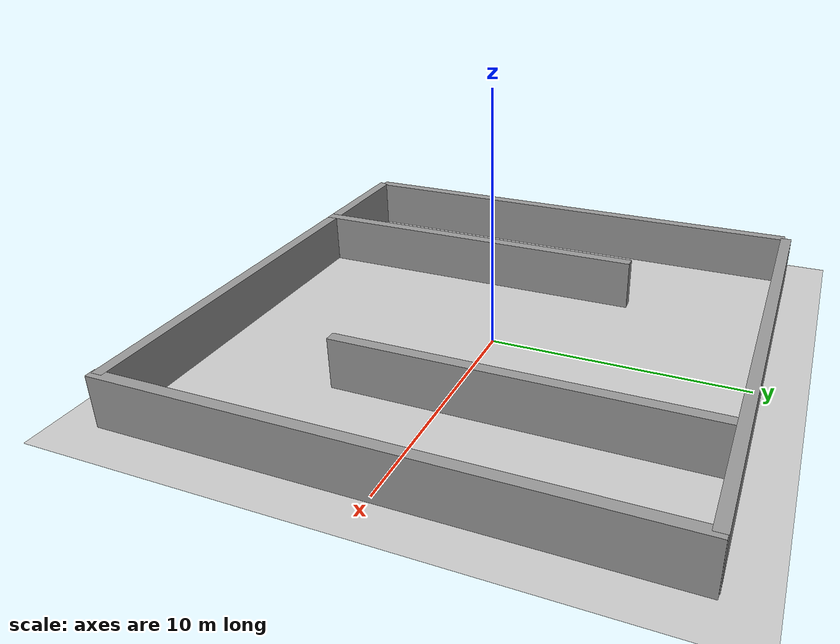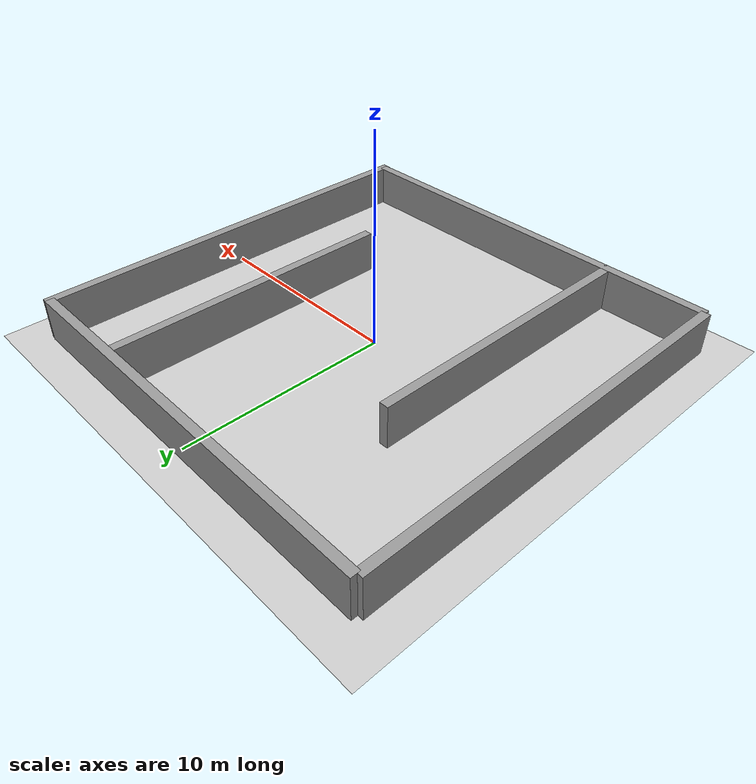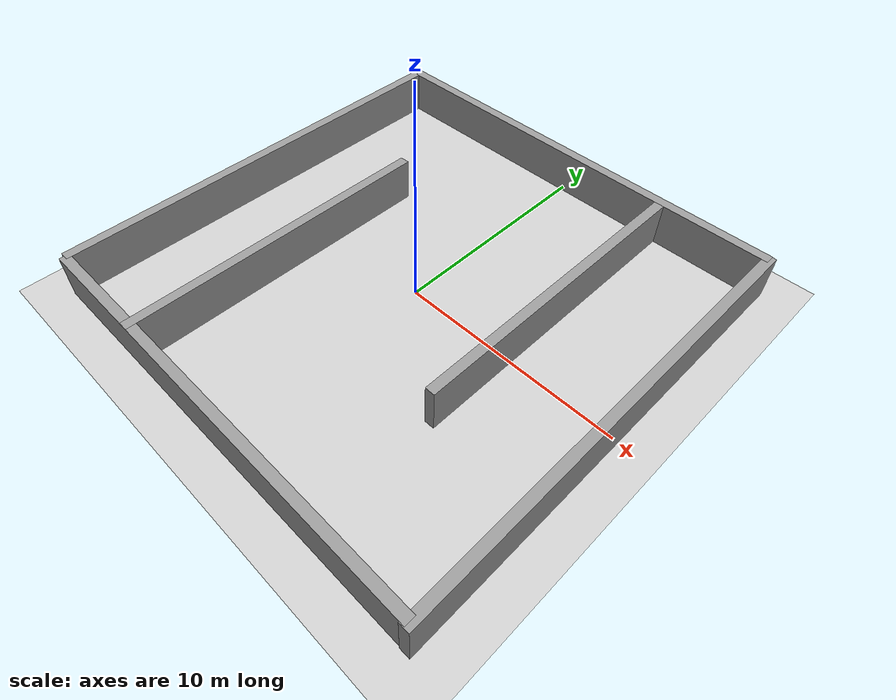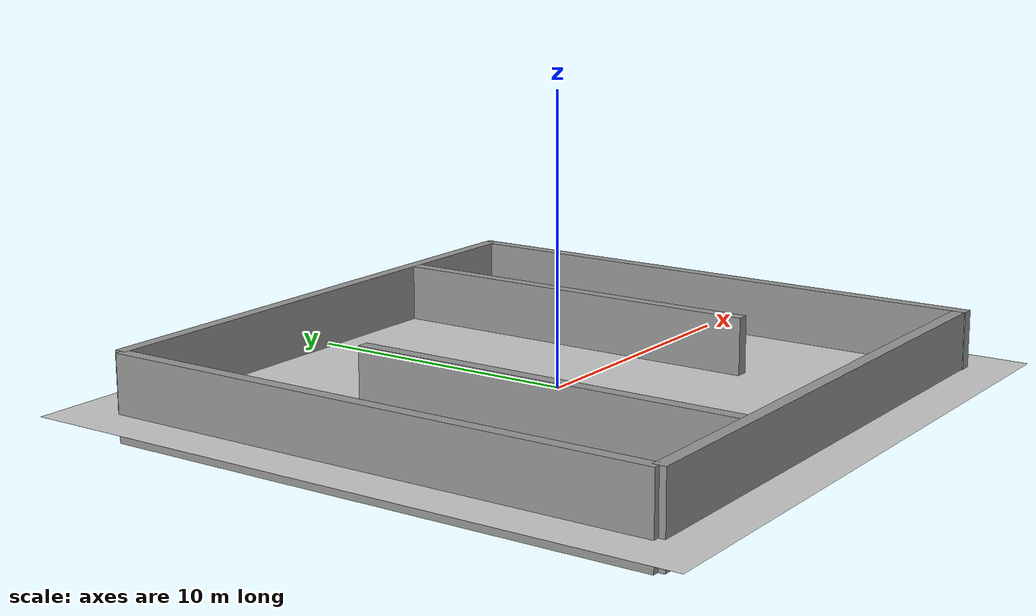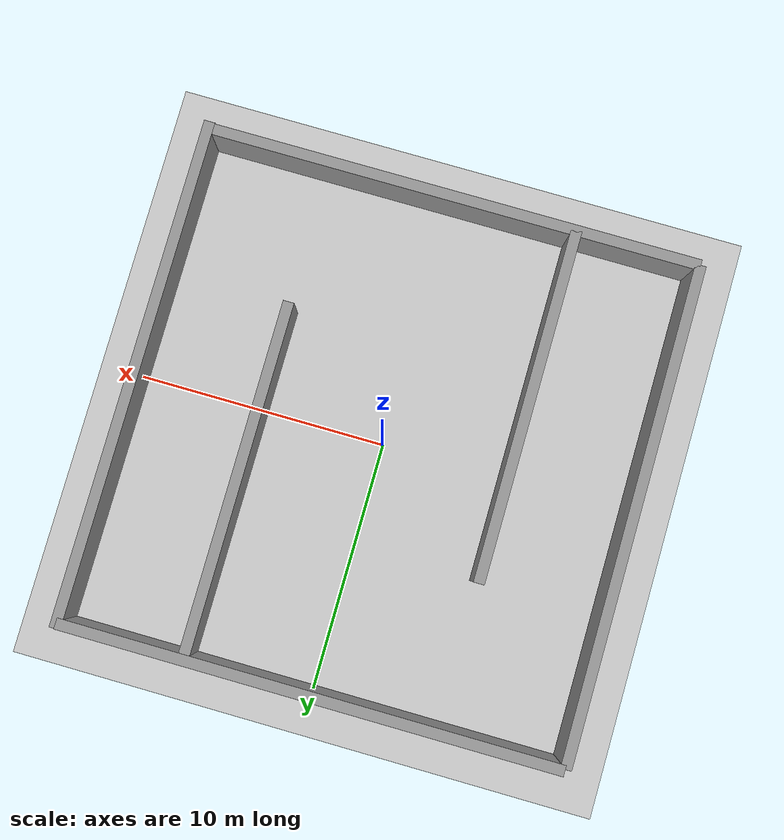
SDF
<sdf version="1.6">
 <world name="default">
  <light name="sun" type="directional">
   <pose>0 0 10 0 -0 0</pose>
   <diffuse>0.8 0.8 0.8 1</diffuse>
   <specular>0.2 0.2 0.2 1</specular>
   <attenuation>
    <range>1000</range>
    <constant>0.9</constant>
    <linear>0.01</linear>
    <quadratic>0.001</quadratic>
   </attenuation>
   <direction>-0.5 0.1 -0.9</direction>
  </light>
  <model name="ground_plane">
   <static>1</static>
   <link name="link">
    <collision name="collision">
     <geometry><plane><normal>0 0 1</normal><size>100 100</size></plane></geometry>
     <surface><friction><ode><mu>100</mu><mu2>50</mu2></ode></friction></surface>
    </collision>
    <visual name="visual">
     <cast_shadows>0</cast_shadows>
     <geometry><plane><normal>0 0 1</normal><size>100 100</size></plane></geometry>
     <material>
      <script><uri>file://media/materials/scripts/gazebo.material</uri><name>Gazebo/Grey</name></script>
     </material>
    </visual>
   </link>
  </model>
  <gravity>0 0 -9.8</gravity>
  <magnetic_field>6e-06 2.3e-05 -4.2e-05</magnetic_field>
  <atmosphere type="adiabatic"/>
  <physics name="default_physics" default="0" type="ode">
   <max_step_size>0.001</max_step_size>
   <real_time_factor>1</real_time_factor>
   <real_time_update_rate>1000</real_time_update_rate>
  </physics>
  <scene><ambient>0.4 0.4 0.4 1</ambient><background>0.7 0.7 0.7 1</background><shadows>1</shadows></scene>
  <spherical_coordinates>
   <surface_model>EARTH_WGS84</surface_model>
   <latitude_deg>0</latitude_deg>
   <longitude_deg>0</longitude_deg>
   <elevation>0</elevation>
   <heading_deg>0</heading_deg>
  </spherical_coordinates>
  <model name="test_map">
   <link name="link_0">
    <pose>2.27252 -10.035 0 0 -0 0</pose>
    <inertial>
     <mass>26.4811</mass>
     <inertia><ixx>20.2907</ixx><ixy>0</ixy><ixz>0</ixz><iyy>902.563</iyy><iyz>0</iyz><izz>883.132</izz></inertia>
    </inertial>
    <visual name="visual">
     <geometry><box><size>20 0.441373 3</size></box></geometry>
     <material>
      <lighting>1</lighting>
      <script><uri>file://media/materials/scripts/gazebo.material</uri><name>Gazebo/Grey</name></script>
      <shader type="pixel"/>
      <ambient>0.3 0.3 0.3 1</ambient>
      <diffuse>0.7 0.7 0.7 1</diffuse>
      <specular>0.01 0.01 0.01 1</specular>
      <emissive>0 0 0 1</emissive>
     </material>
    </visual>
    <collision name="collision">
     <geometry><box><size>20 0.441373 3</size></box></geometry>
     <surface>
      <friction>
       <ode><mu>1</mu><mu2>1</mu2><fdir1>0 0 0</fdir1><slip1>0</slip1><slip2>0</slip2></ode>
       <torsional>
        <coefficient>1</coefficient>
        <patch_radius>0</patch_radius>
        <surface_radius>0</surface_radius>
        <use_patch_radius>1</use_patch_radius>
        <ode><slip>0</slip></ode>
       </torsional>
      </friction>
      <bounce><restitution_coefficient>0</restitution_coefficient><threshold>1e+06</threshold></bounce>
      <contact>
       <collide_without_contact>0</collide_without_contact>
       <collide_without_contact_bitmask>1</collide_without_contact_bitmask>
       <collide_bitmask>1</collide_bitmask>
       <ode>
        <soft_cfm>0</soft_cfm>
        <soft_erp>0.2</soft_erp>
        <kp>1e+13</kp>
        <kd>1</kd>
        <max_vel>0.01</max_vel>
        <min_depth>0</min_depth>
       </ode>
       <bullet>
        <split_impulse>1</split_impulse>
        <split_impulse_penetration_threshold>-0.01</split_impulse_penetration_threshold>
        <soft_cfm>0</soft_cfm>
        <soft_erp>0.2</soft_erp>
        <kp>1e+13</kp>
        <kd>1</kd>
       </bullet>
      </contact>
     </surface>
    </collision>
   </link>
   <link name="link_0_clone">
    <pose>12.2725 -0.03504 0 0 0 -1.5708</pose>
    <inertial>
     <mass>27.1574</mass>
     <inertia><ixx>20.8088</ixx><ixy>0</ixy><ixz>0</ixz><iyy>972.46</iyy><iyz>0</iyz><izz>952.533</izz></inertia>
    </inertial>
    <visual name="visual">
     <geometry><box><size>20.511 0.441373 3</size></box></geometry>
     <material>
      <lighting>1</lighting>
      <script><uri>file://media/materials/scripts/gazebo.material</uri><name>Gazebo/Grey</name></script>
      <shader type="pixel"/>
      <ambient>0.3 0.3 0.3 1</ambient>
      <diffuse>0.7 0.7 0.7 1</diffuse>
      <specular>0.01 0.01 0.01 1</specular>
      <emissive>0 0 0 1</emissive>
     </material>
    </visual>
    <collision name="collision">
     <geometry><box><size>20.511 0.441373 3</size></box></geometry>
     <surface>
      <friction>
       <ode><mu>1</mu><mu2>1</mu2><fdir1>0 0 0</fdir1><slip1>0</slip1><slip2>0</slip2></ode>
       <torsional>
        <coefficient>1</coefficient>
        <patch_radius>0</patch_radius>
        <surface_radius>0</surface_radius>
        <use_patch_radius>1</use_patch_radius>
        <ode><slip>0</slip></ode>
       </torsional>
      </friction>
      <bounce><restitution_coefficient>0</restitution_coefficient><threshold>1e+06</threshold></bounce>
      <contact>
       <collide_without_contact>0</collide_without_contact>
       <collide_without_contact_bitmask>1</collide_without_contact_bitmask>
       <collide_bitmask>1</collide_bitmask>
       <ode>
        <soft_cfm>0</soft_cfm>
        <soft_erp>0.2</soft_erp>
        <kp>1e+13</kp>
        <kd>1</kd>
        <max_vel>0.01</max_vel>
        <min_depth>0</min_depth>
       </ode>
       <bullet>
        <split_impulse>1</split_impulse>
        <split_impulse_penetration_threshold>-0.01</split_impulse_penetration_threshold>
        <soft_cfm>0</soft_cfm>
        <soft_erp>0.2</soft_erp>
        <kp>1e+13</kp>
        <kd>1</kd>
       </bullet>
      </contact>
     </surface>
    </collision>
   </link>
   <link name="link_0_clone_0">
    <pose>-7.72748 -0.03504 0 0 0 -1.5708</pose>
    <inertial>
     <mass>26.4808</mass>
     <inertia><ixx>20.2905</ixx><ixy>0</ixy><ixz>0</ixz><iyy>902.554</iyy><iyz>0</iyz><izz>883.123</izz></inertia>
    </inertial>
    <visual name="visual">
     <geometry><box><size>20 0.441373 3</size></box></geometry>
     <material>
      <lighting>1</lighting>
      <script><uri>file://media/materials/scripts/gazebo.material</uri><name>Gazebo/Grey</name></script>
      <shader type="pixel"/>
      <ambient>0.3 0.3 0.3 1</ambient>
      <diffuse>0.7 0.7 0.7 1</diffuse>
      <specular>0.01 0.01 0.01 1</specular>
      <emissive>0 0 0 1</emissive>
     </material>
    </visual>
    <collision name="collision">
     <geometry><box><size>20 0.441373 3</size></box></geometry>
     <surface>
      <friction>
       <ode><mu>1</mu><mu2>1</mu2><fdir1>0 0 0</fdir1><slip1>0</slip1><slip2>0</slip2></ode>
       <torsional>
        <coefficient>1</coefficient>
        <patch_radius>0</patch_radius>
        <surface_radius>0</surface_radius>
        <use_patch_radius>1</use_patch_radius>
        <ode><slip>0</slip></ode>
       </torsional>
      </friction>
      <bounce><restitution_coefficient>0</restitution_coefficient><threshold>1e+06</threshold></bounce>
      <contact>
       <collide_without_contact>0</collide_without_contact>
       <collide_without_contact_bitmask>1</collide_without_contact_bitmask>
       <collide_bitmask>1</collide_bitmask>
       <ode>
        <soft_cfm>0</soft_cfm>
        <soft_erp>0.2</soft_erp>
        <kp>1e+13</kp>
        <kd>1</kd>
        <max_vel>0.01</max_vel>
        <min_depth>0</min_depth>
       </ode>
       <bullet>
        <split_impulse>1</split_impulse>
        <split_impulse_penetration_threshold>-0.01</split_impulse_penetration_threshold>
        <soft_cfm>0</soft_cfm>
        <soft_erp>0.2</soft_erp>
        <kp>1e+13</kp>
        <kd>1</kd>
       </bullet>
      </contact>
     </surface>
    </collision>
   </link>
   <link name="link_0_clone_0_clone">
    <pose>2.29719 10.0271 0 0 -0 3.14159</pose>
    <inertial>
     <mass>26.4808</mass>
     <inertia><ixx>20.2906</ixx><ixy>0</ixy><ixz>0</ixz><iyy>902.554</iyy><iyz>0</iyz><izz>883.123</izz></inertia>
    </inertial>
    <visual name="visual">
     <geometry><box><size>20 0.441373 3.00001</size></box></geometry>
     <material>
      <lighting>1</lighting>
      <script><uri>file://media/materials/scripts/gazebo.material</uri><name>Gazebo/Grey</name></script>
      <shader type="pixel"/>
      <ambient>0.3 0.3 0.3 1</ambient>
      <diffuse>0.7 0.7 0.7 1</diffuse>
      <specular>0.01 0.01 0.01 1</specular>
      <emissive>0 0 0 1</emissive>
     </material>
    </visual>
    <collision name="collision">
     <geometry><box><size>20 0.441373 3.00001</size></box></geometry>
     <surface>
      <friction>
       <ode><mu>1</mu><mu2>1</mu2><fdir1>0 0 0</fdir1><slip1>0</slip1><slip2>0</slip2></ode>
       <torsional>
        <coefficient>1</coefficient>
        <patch_radius>0</patch_radius>
        <surface_radius>0</surface_radius>
        <use_patch_radius>1</use_patch_radius>
        <ode><slip>0</slip></ode>
       </torsional>
      </friction>
      <bounce><restitution_coefficient>0</restitution_coefficient><threshold>1e+06</threshold></bounce>
      <contact>
       <collide_without_contact>0</collide_without_contact>
       <collide_without_contact_bitmask>1</collide_without_contact_bitmask>
       <collide_bitmask>1</collide_bitmask>
       <ode>
        <soft_cfm>0</soft_cfm>
        <soft_erp>0.2</soft_erp>
        <kp>1e+13</kp>
        <kd>1</kd>
        <max_vel>0.01</max_vel>
        <min_depth>0</min_depth>
       </ode>
       <bullet>
        <split_impulse>1</split_impulse>
        <split_impulse_penetration_threshold>-0.01</split_impulse_penetration_threshold>
        <soft_cfm>0</soft_cfm>
        <soft_erp>0.2</soft_erp>
        <kp>1e+13</kp>
        <kd>1</kd>
       </bullet>
      </contact>
     </surface>
    </collision>
   </link>
   <link name="link_0_clone_0_clone_0">
    <pose>-2.72748 -3.03504 0 0 0 -1.5708</pose>
    <inertial>
     <mass>19.1039</mass>
     <inertia><ixx>14.6381</ixx><ixy>0</ixy><ixz>0</ixz><iyy>345.751</iyy><iyz>0</iyz><izz>331.733</izz></inertia>
    </inertial>
    <visual name="visual">
     <geometry><box><size>14.4285 0.441373 3</size></box></geometry>
     <material>
      <lighting>1</lighting>
      <script><uri>file://media/materials/scripts/gazebo.material</uri><name>Gazebo/Grey</name></script>
      <shader type="pixel"/>
      <ambient>0.3 0.3 0.3 1</ambient>
      <diffuse>0.7 0.7 0.7 1</diffuse>
      <specular>0.01 0.01 0.01 1</specular>
      <emissive>0 0 0 1</emissive>
     </material>
    </visual>
    <collision name="collision">
     <geometry><box><size>14.4285 0.441373 3</size></box></geometry>
     <surface>
      <friction>
       <ode><mu>1</mu><mu2>1</mu2><fdir1>0 0 0</fdir1><slip1>0</slip1><slip2>0</slip2></ode>
       <torsional>
        <coefficient>1</coefficient>
        <patch_radius>0</patch_radius>
        <surface_radius>0</surface_radius>
        <use_patch_radius>1</use_patch_radius>
        <ode><slip>0</slip></ode>
       </torsional>
      </friction>
      <bounce><restitution_coefficient>0</restitution_coefficient><threshold>1e+06</threshold></bounce>
      <contact>
       <collide_without_contact>0</collide_without_contact>
       <collide_without_contact_bitmask>1</collide_without_contact_bitmask>
       <collide_bitmask>1</collide_bitmask>
       <ode>
        <soft_cfm>0</soft_cfm>
        <soft_erp>0.2</soft_erp>
        <kp>1e+13</kp>
        <kd>1</kd>
        <max_vel>0.01</max_vel>
        <min_depth>0</min_depth>
       </ode>
       <bullet>
        <split_impulse>1</split_impulse>
        <split_impulse_penetration_threshold>-0.01</split_impulse_penetration_threshold>
        <soft_cfm>0</soft_cfm>
        <soft_erp>0.2</soft_erp>
        <kp>1e+13</kp>
        <kd>1</kd>
       </bullet>
      </contact>
     </surface>
    </collision>
   </link>
   <link name="link_0_clone_0_clone_0_clone">
    <pose>7.27252 2.96496 0 0 0 -1.5708</pose>
    <inertial>
     <mass>19.127</mass>
     <inertia><ixx>14.6558</ixx><ixy>0</ixy><ixz>0</ixz><iyy>346.975</iyy><iyz>0</iyz><izz>332.94</izz></inertia>
    </inertial>
    <visual name="visual">
     <geometry><box><size>14.446 0.441373 3</size></box></geometry>
     <material>
      <lighting>1</lighting>
      <script><uri>file://media/materials/scripts/gazebo.material</uri><name>Gazebo/Grey</name></script>
      <shader type="pixel"/>
      <ambient>0.3 0.3 0.3 1</ambient>
      <diffuse>0.7 0.7 0.7 1</diffuse>
      <specular>0.01 0.01 0.01 1</specular>
      <emissive>0 0 0 1</emissive>
     </material>
    </visual>
    <collision name="collision">
     <geometry><box><size>14.446 0.441373 3</size></box></geometry>
     <surface>
      <friction>
       <ode><mu>1</mu><mu2>1</mu2><fdir1>0 0 0</fdir1><slip1>0</slip1><slip2>0</slip2></ode>
       <torsional>
        <coefficient>1</coefficient>
        <patch_radius>0</patch_radius>
        <surface_radius>0</surface_radius>
        <use_patch_radius>1</use_patch_radius>
        <ode><slip>0</slip></ode>
       </torsional>
      </friction>
      <bounce><restitution_coefficient>0</restitution_coefficient><threshold>1e+06</threshold></bounce>
      <contact>
       <collide_without_contact>0</collide_without_contact>
       <collide_without_contact_bitmask>1</collide_without_contact_bitmask>
       <collide_bitmask>1</collide_bitmask>
       <ode>
        <soft_cfm>0</soft_cfm>
        <soft_erp>0.2</soft_erp>
        <kp>1e+13</kp>
        <kd>1</kd>
        <max_vel>0.01</max_vel>
        <min_depth>0</min_depth>
       </ode>
       <bullet>
        <split_impulse>1</split_impulse>
        <split_impulse_penetration_threshold>-0.01</split_impulse_penetration_threshold>
        <soft_cfm>0</soft_cfm>
        <soft_erp>0.2</soft_erp>
        <kp>1e+13</kp>
        <kd>1</kd>
       </bullet>
      </contact>
     </surface>
    </collision>
   </link>
   <static>0</static>
   <pose>-2.27252 0.03504 0.5 0 -0 0</pose>
  </model>
 </world>
</sdf>
